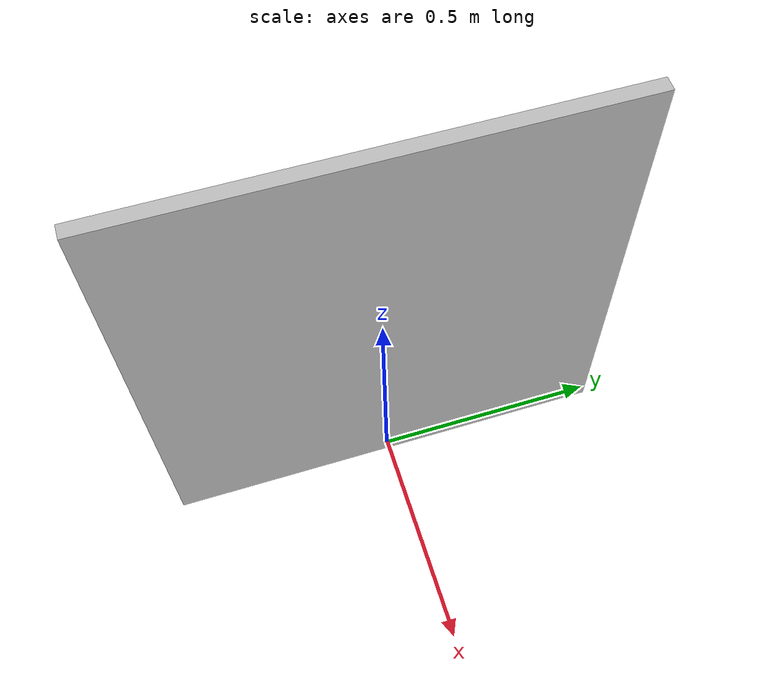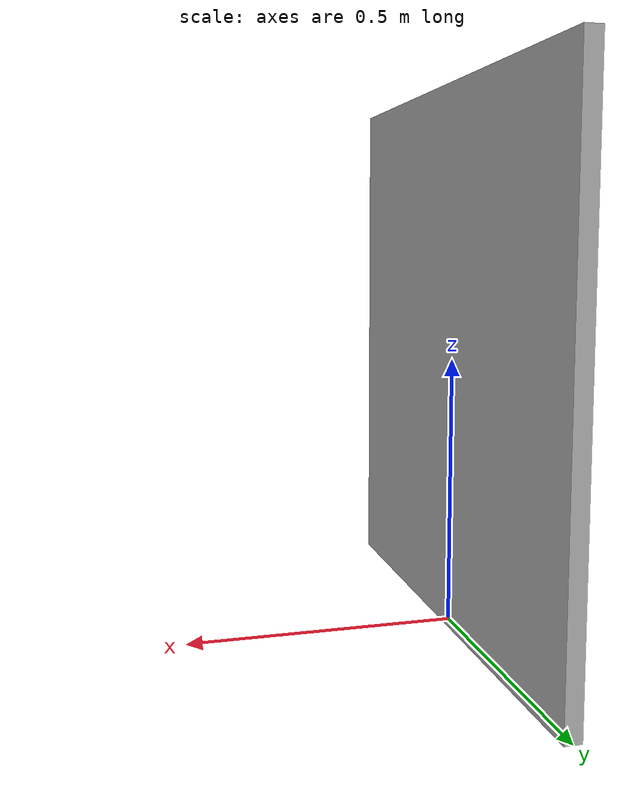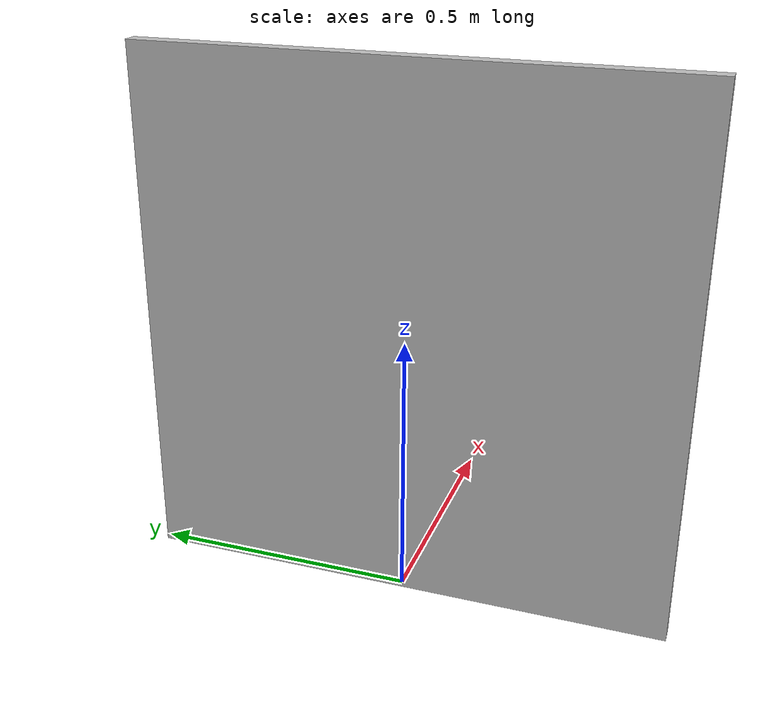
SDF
<?xml version='1.0'?>
<sdf version='1.4'>
  <model name='781'>
    <pose>0 0 0 0 0 0</pose>
    <static>true</static>
    <link name='link'>
      <collision name='collision'>
        <pose>0 0 0 0 0 0</pose>
        <geometry>
          <box>
            <size>0.03 1 2</size>
          </box>
        </geometry>
      </collision>
      <visual name='visual'>
        <pose>0 0 0 0 0 0</pose>
        <geometry>
          <mesh><uri>model://781/781.dae</uri></mesh>
        </geometry>
      </visual>
    </link>
  </model>
</sdf>
